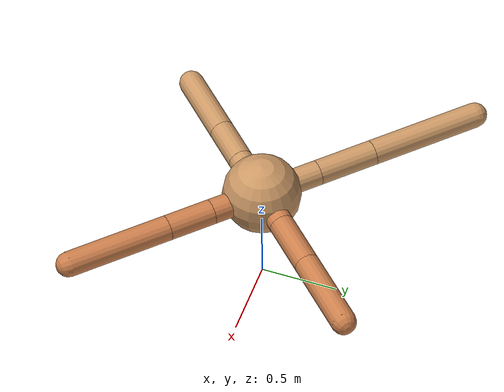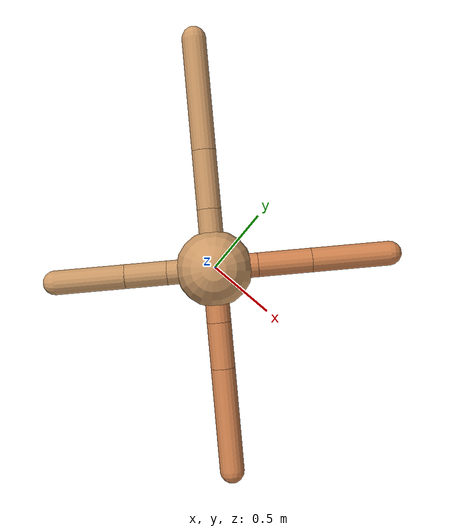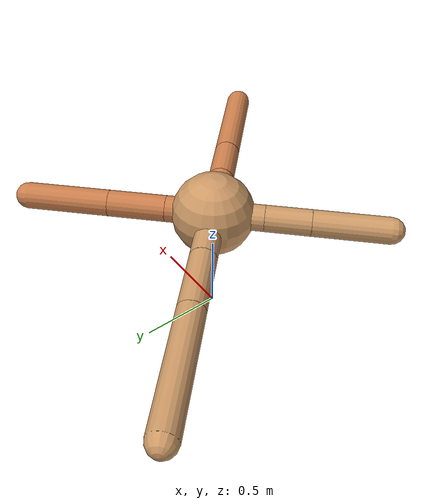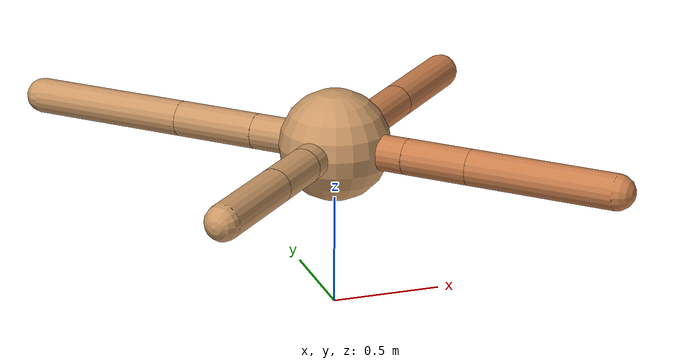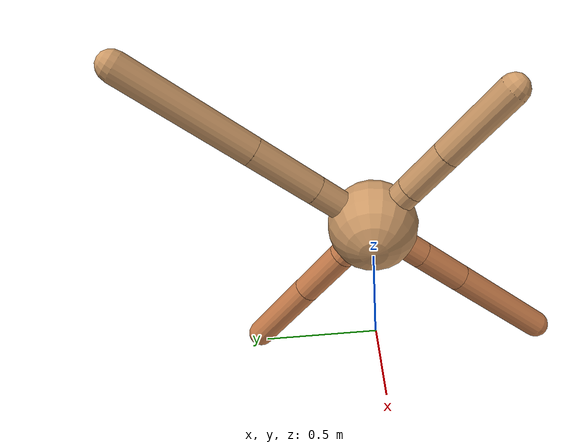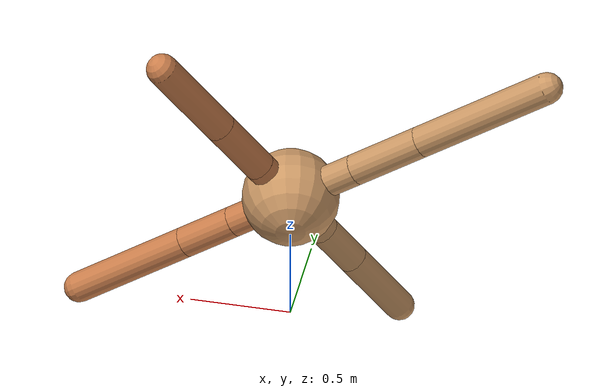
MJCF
<mujoco model="ant">
  <compiler angle="degree" coordinate="local" inertiafromgeom="true" />
  <option integrator="RK4" timestep="0.01" />
  <custom>
    <numeric data="0.0 0.0 0.55 1.0 0.0 0.0 0.0 0.0 1.0 0.0 -1.0 0.0 -1.0 0.0 1.0" name="init_qpos" />
  </custom>
  <default>
    <joint armature="1" damping="1" limited="true" />
    <geom conaffinity="0" condim="3" density="5.0" friction="1.5 0.1 0.1" margin="0.01" rgba="0.8 0.6 0.4 1" />
  </default>
  <worldbody>
    <body name="torso" pos="0 0 0.75">
      <geom name="torso_geom" pos="0 0 0" size="0.25" type="sphere" />

      <body name="front_left_leg" pos="0 0 0">
        <geom fromto="0.0 0.0 0.0 0.20176849673118316 0.20176849673118316 0.0" name="aux_1_geom" size="0.08" type="capsule" rgba=".8 .5 .3 1" />
        <body name="aux_1" pos="0.20176849673118316 0.20176849673118316 0.0">
          <joint axis="0 0 1" name="hip_1" pos="0.0 0.0 0.0" range="-40 40" type="hinge" />
          <geom fromto="0.0 0.0 0.0 0.24712485355627323 0.24712485355627323 0.0" name="left_leg_geom" size="0.08" type="capsule" rgba=".8 .5 .3 1" />
          <body pos="0.24712485355627323 0.24712485355627323 0.0" name="front_left_foot">
            <joint axis="-1 1 0" name="ankle_1" pos="0.0 0.0 0.0" range="30 100" type="hinge" />
            <geom fromto="0.0 0.0 0.0 0.35829739066510663 0.35829739066510663 0.0" name="left_ankle_geom" size="0.08" type="capsule" rgba=".8 .5 .3 1" />
          </body>
        </body>
      </body>
      <body name="front_right_leg" pos="0 0 0">
        <geom fromto="0.0 0.0 0.0 -0.27439411464341773 0.27439411464341773 0.0" name="aux_2_geom" size="0.08" type="capsule" />
        <body name="aux_2" pos="-0.27439411464341773 0.27439411464341773 0.0">
          <joint axis="0 0 1" name="hip_2" pos="0.0 0.0 0.0" range="-40 40" type="hinge" />
          <geom fromto="0.0 0.0 0.0 -0.2718314743299183 0.2718314743299183 0.0" name="right_leg_geom" size="0.08" type="capsule" />
          <body pos="-0.2718314743299183 0.2718314743299183 0.0" name="front_right_foot">
            <joint axis="1 1 0" name="ankle_2" pos="0.0 0.0 0.0" range="-100 -30" type="hinge" />
            <geom fromto="0.0 0.0 0.0 -0.5172619960251925 0.5172619960251925 0.0" name="right_ankle_geom" size="0.08" type="capsule" />
          </body>
        </body>
      </body>
      <body name="left_back_leg" pos="0 0 0">
        <geom fromto="0.0 0.0 0.0 -0.21707009920584053 -0.21707009920584053 0.0" name="aux_3_geom" size="0.08" type="capsule" />
        <body name="aux_3" pos="-0.21707009920584053 -0.21707009920584053 0.0">
          <joint axis="0 0 1" name="hip_3" pos="0.0 0.0 0.0" range="-40 40" type="hinge" />
          <geom fromto="0.0 0.0 0.0 -0.19412463135817248 -0.19412463135817248 0.0" name="back_leg_geom" size="0.08" type="capsule" />
          <body pos="-0.19412463135817248 -0.19412463135817248 0.0" name="left_back_foot">
            <joint axis="-1 1 0" name="ankle_3" pos="0.0 0.0 0.0" range="-100 -30" type="hinge" />
            <geom fromto="0.0 0.0 0.0 -0.32209226038487115 -0.32209226038487115 0.0" name="third_ankle_geom" size="0.08" type="capsule" />
          </body>
        </body>
      </body>
      <body name="right_back_leg" pos="0 0 0">
        <geom fromto="0.0 0.0 0.0 0.24670536132330137 -0.24670536132330137 0.0" name="aux_4_geom" size="0.08" type="capsule" rgba=".8 .5 .3 1" />
        <body name="aux_4" pos="0.24670536132330137 -0.24670536132330137 0.0">
          <joint axis="0 0 1" name="hip_4" pos="0.0 0.0 0.0" range="-40 40" type="hinge" />
          <geom fromto="0.0 0.0 0.0 0.21174812974469687 -0.21174812974469687 0.0" name="rightback_leg_geom" size="0.08" type="capsule" rgba=".8 .5 .3 1" />
          <body pos="0.21174812974469687 -0.21174812974469687 0.0" name="right_back_foot">
            <joint axis="1 1 0" name="ankle_4" pos="0.0 0.0 0.0" range="30 100" type="hinge" />
            <geom fromto="0.0 0.0 0.0 0.47298796013319483 -0.47298796013319483 0.0" name="fourth_ankle_geom" size="0.08" type="capsule" rgba=".8 .5 .3 1" />
          </body>
        </body>
      </body>
    </body>
  </worldbody>
  <actuator>
    <motor ctrllimited="true" ctrlrange="-1.0 1.0" joint="hip_4" gear="150" />
    <motor ctrllimited="true" ctrlrange="-1.0 1.0" joint="ankle_4" gear="150" />
    <motor ctrllimited="true" ctrlrange="-1.0 1.0" joint="hip_1" gear="150" />
    <motor ctrllimited="true" ctrlrange="-1.0 1.0" joint="ankle_1" gear="150" />
    <motor ctrllimited="true" ctrlrange="-1.0 1.0" joint="hip_2" gear="150" />
    <motor ctrllimited="true" ctrlrange="-1.0 1.0" joint="ankle_2" gear="150" />
    <motor ctrllimited="true" ctrlrange="-1.0 1.0" joint="hip_3" gear="150" />
    <motor ctrllimited="true" ctrlrange="-1.0 1.0" joint="ankle_3" gear="150" />
  </actuator>
</mujoco>
